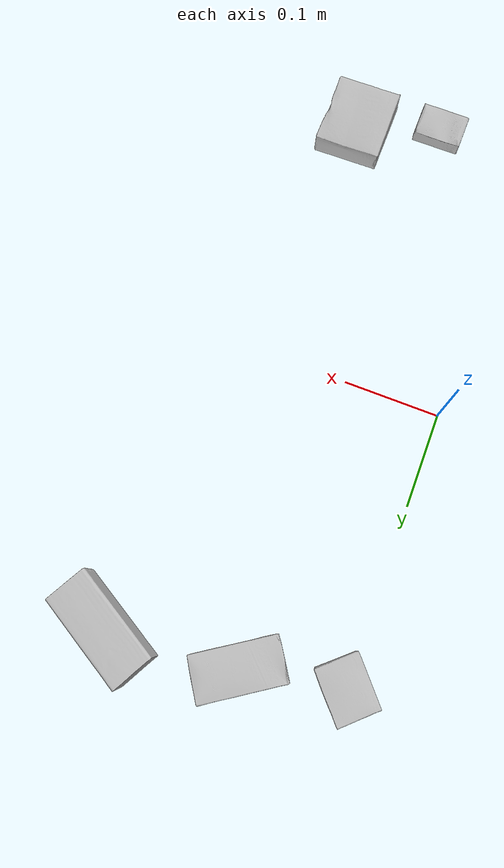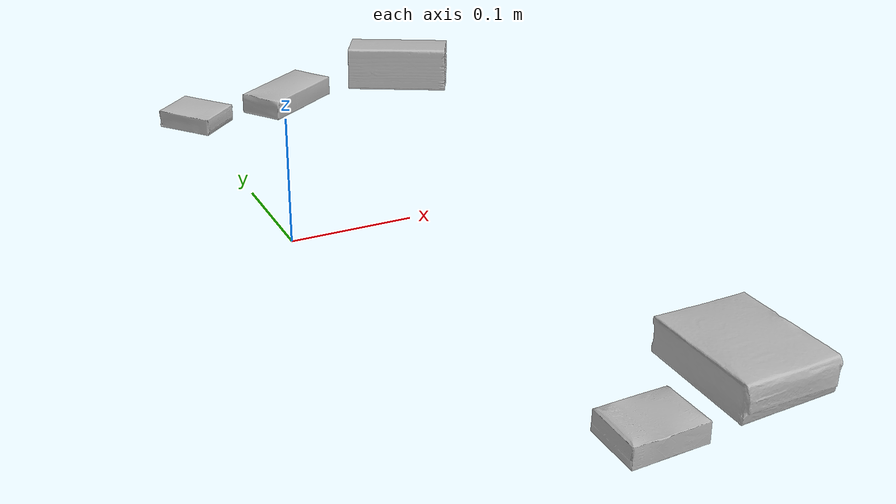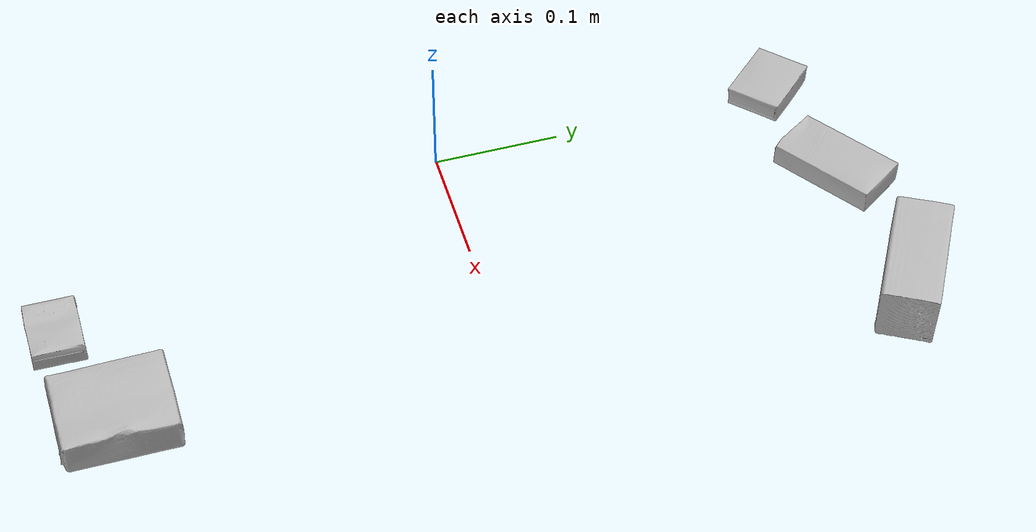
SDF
<?xml version="1.0" ?>
<sdf version="1.4">
  <world name="default">
    <light name="light1" type="point">
      <pose>0 0 1 0 0 0</pose>
      <diffuse>3 3 3 1</diffuse>
      <specular>3 3 3 1</specular>
    </light>
    <light name="light2" type="point">
      <pose>0 0.5 2 0 0 0</pose>
      <diffuse>1 1 1 1</diffuse>
      <specular>1 1 1 1</specular>
    </light>
    <light name="light3" type="point">
      <pose>0 0.5 2 0 0 0</pose>
      <diffuse>3 3 3 1</diffuse>
      <specular>3 3 3 1</specular>
    </light>
    <scene>
      <ambient>0.7 0.7 0.7</ambient>
    </scene>
    <model name="box1">
      <link name="link_box1">
        <collision name="default">
          <geometry>
            <mesh>
              <uri>model://gelatin_box/collision_meshes/collision.obj</uri>
              <scale>1.0 1.0 1.0</scale>
            </mesh>
          </geometry>
          <surface>
            <friction>
              <ode>
                <mu>0.5</mu>
                <mu2>0.5</mu2>
              </ode>
            </friction>
          </surface>
        </collision>
        <visual name="default">
          <geometry>
            <mesh>
              <uri>model://gelatin_box/visual_meshes/visual.dae</uri>
              <scale>1.0 1.0 1.0</scale>
            </mesh>
          </geometry>
        </visual>
        <inertial>
          <mass>0.2001359760761261</mass>
          <pose>0.0004319618456065655 0.00011156872642459348 -0.00036403213744051754 -0.0010503718728910522 -0.00475581915504666 0.01644056319729456</pose>
          <inertia>
            <ixx>0.00014127967</ixx>
            <iyy>0.00010091532</iyy>
            <izz>0.00021505913</izz>
            <ixy>0</ixy>
            <ixz>0</ixz>
            <iyz>0</iyz>
          </inertia>
        </inertial>
      </link>
      <pose>0.18995124101638794 -0.290071576833725 0.01516831573098898 0.005597485347879177 -0.007304564702660121 6.19776809143853e-06</pose>
    </model>
    <model name="box2">
      <link name="link_box2">
        <collision name="default">
          <geometry>
            <mesh>
              <uri>model://cracker_box/collision_meshes/collision.obj</uri>
              <scale>0.25 0.25 0.25</scale>
            </mesh>
          </geometry>
          <surface>
            <friction>
              <ode>
                <mu>0.5</mu>
                <mu2>0.5</mu2>
              </ode>
            </friction>
          </surface>
        </collision>
        <visual name="default">
          <geometry>
            <mesh>
              <uri>model://cracker_box/visual_meshes/visual.dae</uri>
              <scale>0.25 0.25 0.25</scale>
            </mesh>
          </geometry>
        </visual>
        <inertial>
          <mass>0.052757441997528076</mass>
          <pose>0.00023660421720705926 6.358561950037256e-05 -0.0004257383698131889 -0.0003162076882876523 -0.011106491463043667 0.002546795002652857</pose>
          <inertia>
            <ixx>8.38696e-06</ixx>
            <iyy>1.384852e-05</iyy>
            <izz>1.9763109e-05</izz>
            <ixy>0</ixy>
            <ixz>0</ixz>
            <iyz>0</iyz>
          </inertia>
        </inertial>
      </link>
      <pose>0.09993372857570648 -0.3198489546775818 0.009120452217757702 -0.011788101175374226 -0.007367099288394068 5.3772343711411396e-05</pose>
    </model>
    <model name="box3">
      <link name="link_box3">
        <collision name="default">
          <geometry>
            <mesh>
              <uri>model://wood_block/collision_meshes/collision.obj</uri>
              <scale>0.5 0.5 0.5</scale>
            </mesh>
          </geometry>
          <surface>
            <friction>
              <ode>
                <mu>0.5</mu>
                <mu2>0.5</mu2>
              </ode>
            </friction>
          </surface>
        </collision>
        <visual name="default">
          <geometry>
            <mesh>
              <uri>model://wood_block/visual_meshes/visual.dae</uri>
              <scale>0.5 0.5 0.5</scale>
            </mesh>
          </geometry>
        </visual>
        <inertial>
          <mass>0.15567830204963684</mass>
          <pose>-2.9066577553749084e-06 -0.000285404734313488 0.00013204292918089777 -0.052210429644919926 -0.005192696852900695 -0.006861378081336091</pose>
          <inertia>
            <ixx>5.2080282e-05</ixx>
            <iyy>0.00016452163</iyy>
            <izz>0.00016390622</izz>
            <ixy>0</ixy>
            <ixz>0</ixz>
            <iyz>0</iyz>
          </inertia>
        </inertial>
      </link>
      <pose>0.23028415441513062 0.31084275245666504 0.022527635097503662 -0.015778961676414457 -0.0003803268201615422 -0.5019783622261076</pose>
    </model>
    <model name="box4">
      <link name="link_box4">
        <collision name="default">
          <geometry>
            <mesh>
              <uri>model://pudding_box/collision_meshes/collision.obj</uri>
              <scale>0.5 0.5 0.5</scale>
            </mesh>
          </geometry>
          <surface>
            <friction>
              <ode>
                <mu>0.5</mu>
                <mu2>0.5</mu2>
              </ode>
            </friction>
          </surface>
        </collision>
        <visual name="default">
          <geometry>
            <mesh>
              <uri>model://pudding_box/visual_meshes/visual.dae</uri>
              <scale>0.5 0.5 0.5</scale>
            </mesh>
          </geometry>
        </visual>
        <inertial>
          <mass>0.0498165600001812</mass>
          <pose>0.00024474109522998333 0.00040339428232982755 -0.0002594413817860186 0.00521310227074754 -0.006603796865596143 0.02007982702575369</pose>
          <inertia>
            <ixx>1.4078764e-05</ixx>
            <iyy>9.472293e-06</iyy>
            <izz>2.0790974e-05</izz>
            <ixy>0</ixy>
            <ixz>0</ixz>
            <iyz>0</iyz>
          </inertia>
        </inertial>
      </link>
      <pose>-1.7097831005230546e-05 0.2796081602573395 0.009862902574241161 0.02234869486339898 -0.011391585259935201 0.7338312643532393</pose>
    </model>
    <model name="box5">
      <link name="link_box5">
        <collision name="default">
          <geometry>
            <mesh>
              <uri>model://sugar_box/collision_meshes/collision.obj</uri>
              <scale>0.5 0.5 0.5</scale>
            </mesh>
          </geometry>
          <surface>
            <friction>
              <ode>
                <mu>0.5</mu>
                <mu2>0.5</mu2>
              </ode>
            </friction>
          </surface>
        </collision>
        <visual name="default">
          <geometry>
            <mesh>
              <uri>model://sugar_box/visual_meshes/visual.dae</uri>
              <scale>0.5 0.5 0.5</scale>
            </mesh>
          </geometry>
        </visual>
        <inertial>
          <mass>0.08508674055337906</mass>
          <pose>0.0005171863595023751 1.924554817378521e-05 -0.00018182402709499002 -0.0004046257768003499 0.0010506634050152445 0.002615378556389427</pose>
          <inertia>
            <ixx>1.7723507e-05</ixx>
            <iyy>5.7286023e-05</iyy>
            <izz>6.85782e-05</izz>
            <ixy>0</ixy>
            <ixz>0</ixz>
            <iyz>0</iyz>
          </inertia>
        </inertial>
      </link>
      <pose>0.09967700392007828 0.29962512850761414 0.011399303562939167 0.000775373659062838 -0.02343331102828964 0.5829699151706207</pose>
    </model>
  </world>
</sdf>
